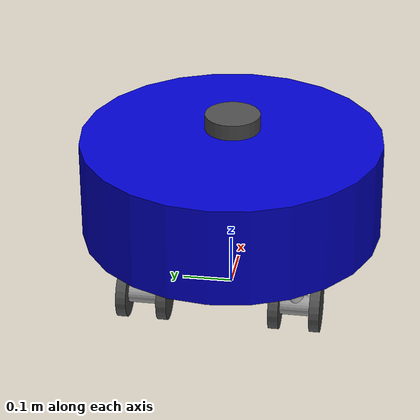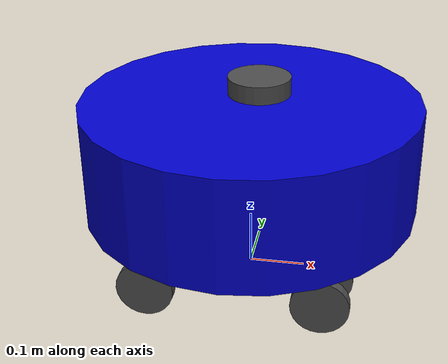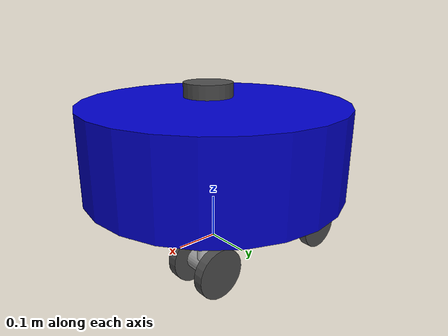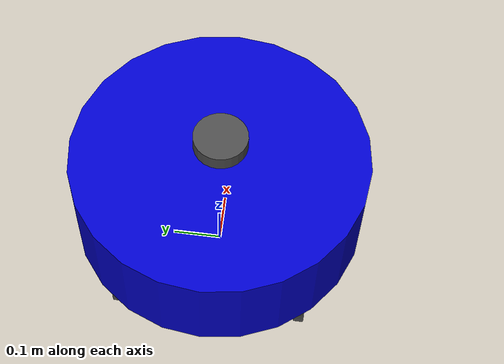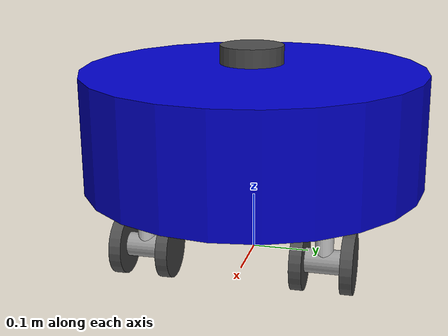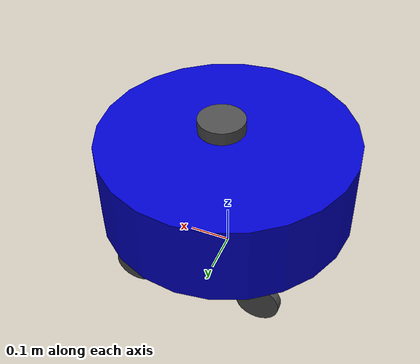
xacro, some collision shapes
<?xml version="1.0"?>

<robot xmlns:xacro="http://ros.org/wiki/xacro" name="dyno_holonomic" >
  <xacro:arg name="use_ros_control_for_base" default="true"/>
  <xacro:arg name="base_variant" default="default"/>

  <xacro:include filename="../urdf/materials/materials.xacro"/>
  <xacro:include filename="../urdf/utils.urdf.xacro"/>
  <xacro:include filename="../urdf/plugins.gazebo.xacro"/>

  <!-- Set up definitions of parts of robot body -->
  <xacro:include filename="../urdf/base/holonomic_base.urdf.xacro"/>
  <xacro:include filename="../urdf/sensors/lds_lfcd.urdf.xacro"/>
  <xacro:include filename="../urdf/sensors/imu.urdf.xacro"/>

  <!-- Use macros to define the actual robot -->
  <base/>

  <!-- Laser Scanner -->
  <lds_lfcd name="base_scan" x_offset="0" y_offset="0" z_offset="0.175" yaw_offset="0" parent="base_link"/>

  <!-- Imu -->
  <imu x_offset="0" y_offset="0" z_offset="0"/>

</robot>

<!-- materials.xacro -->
<robot>
  <material name="black">
      <color rgba="0.0 0.0 0.0 1.0"/>
  </material>

  <material name="dark">
    <color rgba="0.3 0.3 0.3 1.0"/>
  </material>
  <material name="light_black">
    <color rgba="0.4 0.4 0.4 1.0"/>
  </material>

  <material name="blue">
    <color rgba="0.0 0.0 0.8 1.0"/>
  </material>

  <material name="light_blue">
    <color rgba="0.3 0.3 0.8 1.0"/>
  </material>

  <material name="green">
    <color rgba="0.0 0.8 0.0 1.0"/>
  </material>

  <material name="grey">
    <color rgba="0.5 0.5 0.5 1.0"/>
  </material>

  <material name="orange">
    <color rgba="${255/255} ${108/255} ${10/255} 1.0"/>
  </material>

  <material name="brown">
    <color rgba="${222/255} ${207/255} ${195/255} 1.0"/>
  </material>

  <material name="red">
    <color rgba="0.8 0.0 0.0 1.0"/>
  </material>

  <material name="white">
    <color rgba="1.0 1.0 1.0 1.0"/>
  </material>

</robot>

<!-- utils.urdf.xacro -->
<robot xmlns:xacro="http://ros.org/wiki/xacro">

  <!-- Constants -->
  <xacro:property name="M_PI" value="3.1415926535897931"/>

  <!-- Inertia -->
  <xacro:macro name="cylinder_inertia" params="m r h">
    <inertia ixx="${m*(3*r*r+h*h)/12}" ixy="0" ixz="0" iyy="${m*(3*r*r+h*h)/12}" iyz="0" izz="${m*r*r/2}"/>
  </xacro:macro>

  <xacro:macro name="box_inertia" params="m x y z">
    <inertia ixx="${m*(y*y+z*z)/12}" ixy="0" ixz="0" iyy="${m*(z*z+x*x)/12}" iyz="0" izz="${m*(x*x+y*y)/12}"/>
  </xacro:macro>

  <xacro:macro name="simple_transmission" params="name interface" >
    <transmission name="${name}_trans">
      <type>transmission_interface/SimpleTransmission</type>
      <joint name="${name}">
        <hardwareInterface>hardware_interface/${interface}</hardwareInterface>
      </joint>
      <actuator name="${name}_motor">
        <mechanicalReduction>10</mechanicalReduction>
        <hardwareInterface>hardware_interface/${interface}</hardwareInterface>
      </actuator>
    </transmission>
  </xacro:macro>
</robot>

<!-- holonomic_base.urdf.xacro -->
<!-- Guidebot differential drive base -->

<robot xmlns:xacro="http://ros.org/wiki/xacro">

  <xacro:include filename="holonomic_base.gazebo.xacro"/>

  <xacro:include filename="../wheels/holonomic/wheel_assembly.urdf.xacro"/>

  <!-- Base footprint offset -->
  <xacro:property name="base_footprint_height_offset" value="0.19"/> <!-- old value 0.19 -->

  <!-- Base -->
  <xacro:macro name="base">
    <!-- Base -->

    <link name="base_link">

      <visual>
        <origin xyz="0 0 0.04" rpy="0 0 0"/>
        <geometry>
          <cylinder length="0.2" radius="0.3"/>
        </geometry>
        <material name="blue"/>
      </visual>

      <collision>
        <origin xyz="0 0 0.04" rpy="0 0 0"/>
        <geometry>
          <cylinder length="0.2" radius="0.3"/>
        </geometry>
        <material name="orange"/>
      </collision>

      <!-- TODO: update according to real base properties -->
      <inertial>
        <mass value="10.0" />
        <origin xyz="0 0 -0.2" />
        <cylinder_inertia m="10.0" r="0.3" h="0.2" />
      </inertial>

    </link>

    <!-- Base footprint -->
    <link name="base_footprint">
    </link>

    <joint name="base_footprint_joint" type="fixed">
      <origin xyz="0 0 ${base_footprint_height_offset}" rpy="0 0 0"/>
      <parent link="base_footprint"/>
      <child link="base_link"/>
    </joint>

    <!-- Macros -->
    <xacro:wheel_assembly suffix="front_left" rot_axis="1">
      <origin xyz="${caster_offset_x} ${caster_offset_y} 0.0" rpy="0 0 0"/>
    </xacro:wheel_assembly>
    <xacro:wheel_assembly suffix="front_right" rot_axis="1">
      <origin xyz="${caster_offset_x} -${caster_offset_y} 0.0" rpy="0 0 0"/>
    </xacro:wheel_assembly>
    <xacro:wheel_assembly suffix="rear_left" rot_axis="1">
      <origin xyz="-${caster_offset_x} ${caster_offset_y} 0.0" rpy="0 0 0"/>
    </xacro:wheel_assembly>
    <xacro:wheel_assembly suffix="rear_right" rot_axis="1">
      <origin xyz="-${caster_offset_x} -${caster_offset_y} 0.0" rpy="0 0 0"/>
    </xacro:wheel_assembly>

    <!-- Gazebo extentions -->
    <base_gazebo/>

  </xacro:macro>

</robot>

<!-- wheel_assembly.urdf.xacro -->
<!-- Guidebot differential drive base -->

<robot xmlns:xacro="http://ros.org/wiki/xacro">
  <xacro:include filename="wheel_assembly.gazebo.xacro"/>

  <!-- Constants -->
  <xacro:property name="M_PI" value="3.1415926535897931"/>
  <xacro:property name="mx160_effort" value="8.3"/>
  <!-- 8.3 N/m ?? 45rpm -> 4.71 rad/s-->
  <xacro:property name="mx160_velocity" value="4.71"/>

  <!-- Tire characteristics -->
  <xacro:property name="wheel_radius" value="0.05"/>
  <xacro:property name="wheel_width" value="0.02"/>

  <!-- Caster characteristics -->
  <xacro:property name="caster_offset_x" value="0.15"/>
  <xacro:property name="caster_offset_y" value="0.15"/>
  <xacro:property name="caster_offset_z" value="0.14"/>

  <!-- Wheel Tire-->
  <xacro:macro name="wheel_tire" params="parent suffix offset">
    <joint name="${parent}_wheel_tire_${suffix}" type="fixed">
      <origin xyz="0 0 ${offset}" rpy="0 0 0"/>
      <parent link="${parent}_wheel_link"/>
      <child link="${parent}_wheel_tire_${suffix}_link"/>
    </joint>

    <link name="${parent}_wheel_tire_${suffix}_link">
      <inertial>
        <mass value="0.1"/>
        <origin xyz="0 0 0"/>
        <cylinder_inertia m="0.1" r="${wheel_radius}" h="${wheel_width}"/>
      </inertial>
      <visual>
        <geometry>
          <cylinder length="${wheel_width}" radius="${wheel_radius}"/>
        </geometry>
        <material name="DarkGrey"/>
      </visual>
      <collision>

        <geometry>
          <cylinder length="${wheel_width}" radius="${wheel_radius}"/>
        </geometry>

      </collision>
    </link>

    <xacro:gazebo_tire_link name="${parent}_wheel_tire_${suffix}_link" color="Black"/>

  </xacro:macro>

  <!-- Wheel Shaft -->
  <xacro:macro name="wheel_schaft" params="suffix rot_axis">

    <joint name="${suffix}_wheel_joint" type="continuous">
      <axis xyz="0 0 ${rot_axis}"/>
      <limit effort="${mx160_effort*500}" velocity="${mx160_velocity*100}"/>
      <dynamics damping="0.0" friction="0.0"/>
      <origin xyz="0 0 -${caster_offset_z}" rpy="-${M_PI/2} 0 0"/>
      <parent link="${suffix}_steer_link"/>
      <child link="${suffix}_wheel_link"/>
    </joint>

    <xacro:if value="$(arg use_ros_control_for_base)">
      <xacro:simple_transmission name="${suffix}_wheel_joint" interface="VelocityJointInterface"/>
    </xacro:if>

    <link name="${suffix}_wheel_link">
      <inertial>
        <mass value="0.5"/>
        <origin xyz="0 0 0"/>
        <cylinder_inertia m="0.5" r="0.02" h="0.100"/>
      </inertial>
      <visual>
        <geometry>
          <cylinder length="0.095" radius="0.02"/>
        </geometry>
        <material name="Grey"/>
      </visual>
      <collision>
        <geometry>
          <cylinder length="${0.100 - wheel_width*2 - 0.01}" radius="0.02"/>
          <!-- avoid collision to tire -->
        </geometry>
      </collision>
    </link>

    <xacro:gazebo_tire_link name="${suffix}_wheel_link" color="Grey"/>

  </xacro:macro>

  <!-- Wheel Steer -->
  <xacro:macro name="wheel_steer" params="suffix">
    <joint name="${suffix}_steer_joint" type="revolute">
      <axis xyz="0 0 1"/>
      <limit lower="${-90*M_PI/180.0}" upper="${90*M_PI/180.0}" effort="${mx160_effort}" velocity="${mx160_velocity}"/>
      <dynamics damping="0.0" friction="0.0"/>
      <xacro:insert_block name="origin"/>
      <parent link="base_link"/>
      <child link="${suffix}_steer_link"/>
    </joint>

    <xacro:if value="$(arg use_ros_control_for_base)">
      <xacro:simple_transmission name="${suffix}_steer_joint" interface="PositionJointInterface"/>
    </xacro:if>

    <link name="${suffix}_steer_link">
      <inertial>
        <mass value="1.0"/>
        <origin xyz="0 0 -${caster_offset_z/2}" rpy="0 0 0"/>
        <cylinder_inertia m="0.1" r="0.015" h="${caster_offset_z}"/>
      </inertial>
      <visual>
        <origin xyz="0 0 -${caster_offset_z/2}" rpy="0 0 0"/>
        <geometry>
          <cylinder length="${caster_offset_z}" radius="0.015"/>
        </geometry>
        <material name="LightGrey"/>
      </visual>
      <collision>
        <origin xyz="0 0 -${caster_offset_z/2}" rpy="0 0 0"/>
        <geometry>
          <cylinder length="${caster_offset_z-0.05}" radius="0.015"/>
          <!-- avoid collision for wheel_schaft radius(0.02) -->
        </geometry>
      </collision>
    </link>

    <xacro:gazebo_steer_link name="${suffix}_steer_link" color="White"/>

  </xacro:macro>

  <!-- Wheel Assembly -->
  <xacro:macro name="wheel_assembly" params="suffix *origin rot_axis">

    <xacro:wheel_steer suffix="${suffix}"/>
    <xacro:wheel_schaft suffix="${suffix}" rot_axis="${rot_axis}"/>
    <xacro:wheel_tire parent="${suffix}" suffix="l" offset="${0.05-wheel_width/2}"/>
    <xacro:wheel_tire parent="${suffix}" suffix="r" offset="-${0.05-wheel_width/2}"/>

  </xacro:macro>

</robot>

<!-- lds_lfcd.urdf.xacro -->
<robot xmlns:xacro="http://ros.org/wiki/xacro">
  <xacro:include filename="lds_lfcd.gazebo.xacro"/>

  <xacro:macro name="lds_lfcd" params="name x_offset y_offset z_offset yaw_offset parent">
    <joint name="${name}_joint" type="fixed">
      <parent link="${parent}"/>
      <child link="${name}_link"/>
      <origin xyz="${x_offset} ${y_offset} ${z_offset}" rpy="0 0 ${yaw_offset}"/>
    </joint>

    <link name="${name}_link">
      <visual>
        <origin xyz="0 0 0.0" rpy="0 0 0"/>
        <geometry>
          <mesh filename="package://dyno_description/meshes/sensors/lds.stl" scale="0.001 0.001 0.001"/>
        </geometry>
        <material name="dark"/>
      </visual>

      <collision>
        <origin xyz="0.015 0 -0.0065" rpy="0 0 0"/>
        <geometry>
          <cylinder length="0.0315" radius="0.055"/>
        </geometry>
      </collision>

      <inertial>
        <mass value="0.114" />
        <origin xyz="0 0 0" />
        <inertia ixx="0.001" ixy="0.0" ixz="0.0"
                 iyy="0.001" iyz="0.0"
                 izz="0.001" />
      </inertial>
    </link>

    <lds_lfcd_gazebo name="${name}"/>
  </xacro:macro>

</robot>

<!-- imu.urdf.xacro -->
<robot xmlns:xacro="http://ros.org/wiki/xacro">

  <xacro:include filename="imu.gazebo.xacro"/>
  <xacro:macro name="imu" params="x_offset y_offset z_offset">

    <link name="imu_link">
      <visual>
        <origin xyz="0 0 0.0" rpy="0 0 0"/>
        <geometry>
          <cylinder length="0.001" radius="0.001"/>
        </geometry>
      </visual>
      <inertial>
        <origin xyz="0 0 0" rpy="0 0 0"/>
        <mass value="0.001"/>
        <box_inertia m="0.001" x="0.01" y="0.01" z="0.002"/>
      </inertial>
    </link>

    <joint name="imu_joint" type="fixed">
      <origin xyz="${x_offset} ${y_offset} ${z_offset}" rpy="0 0 0"/>
      <parent link="base_link"/>
      <child link="imu_link"/>
    </joint>

  </xacro:macro>

</robot>
